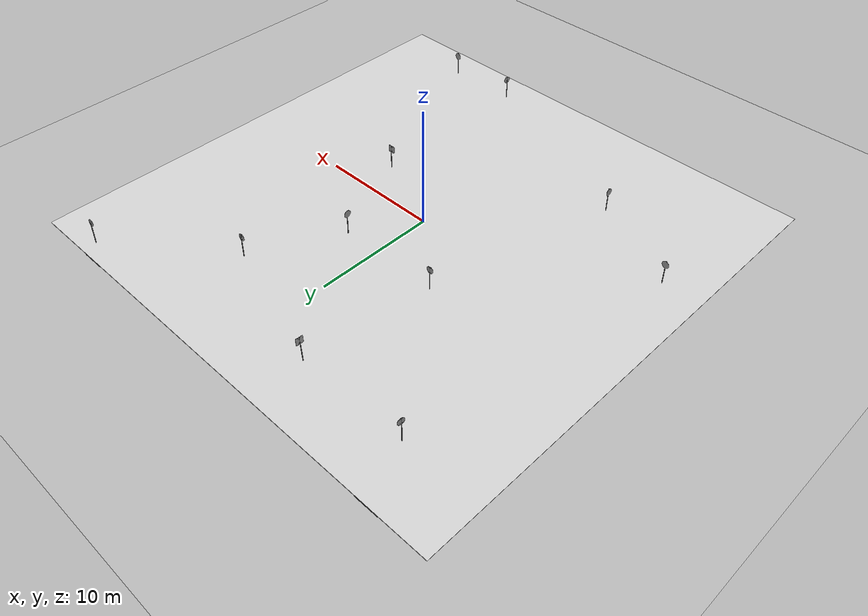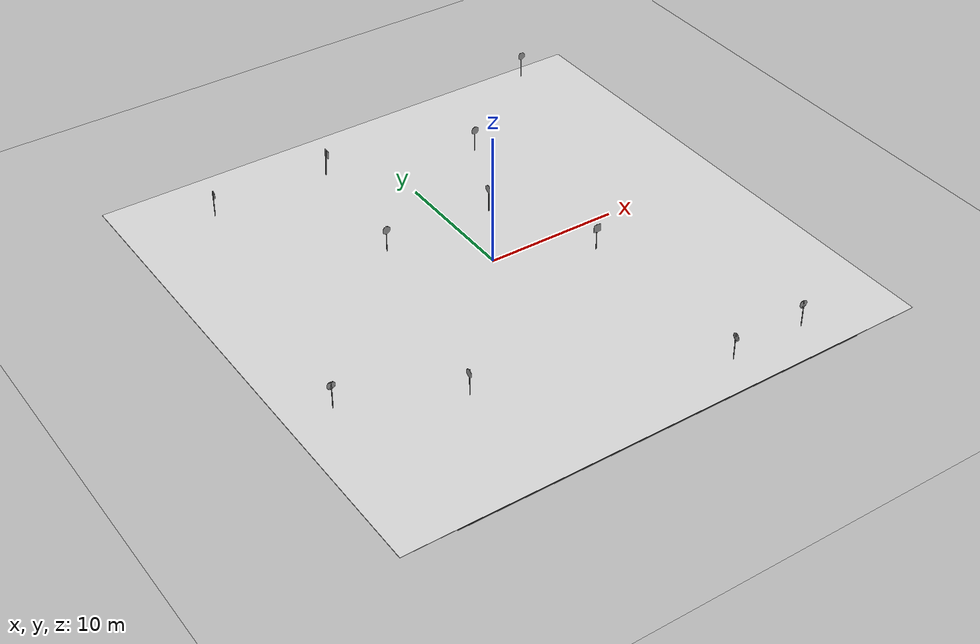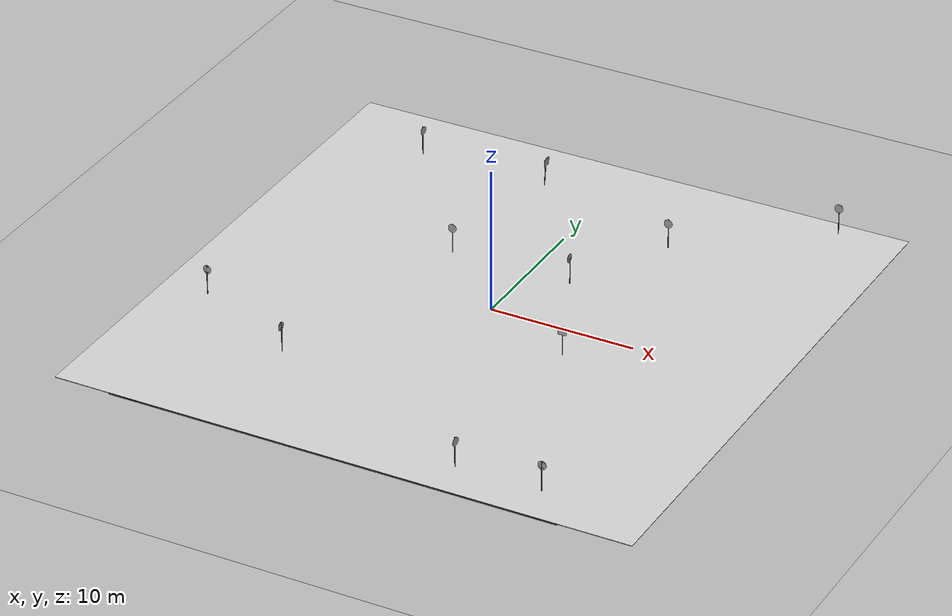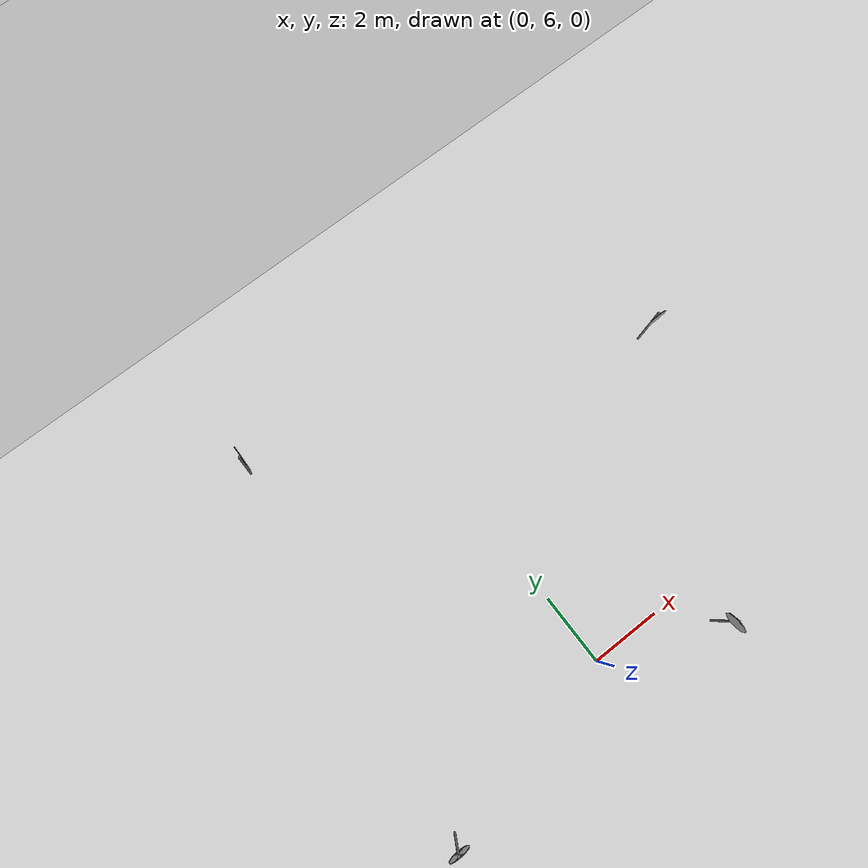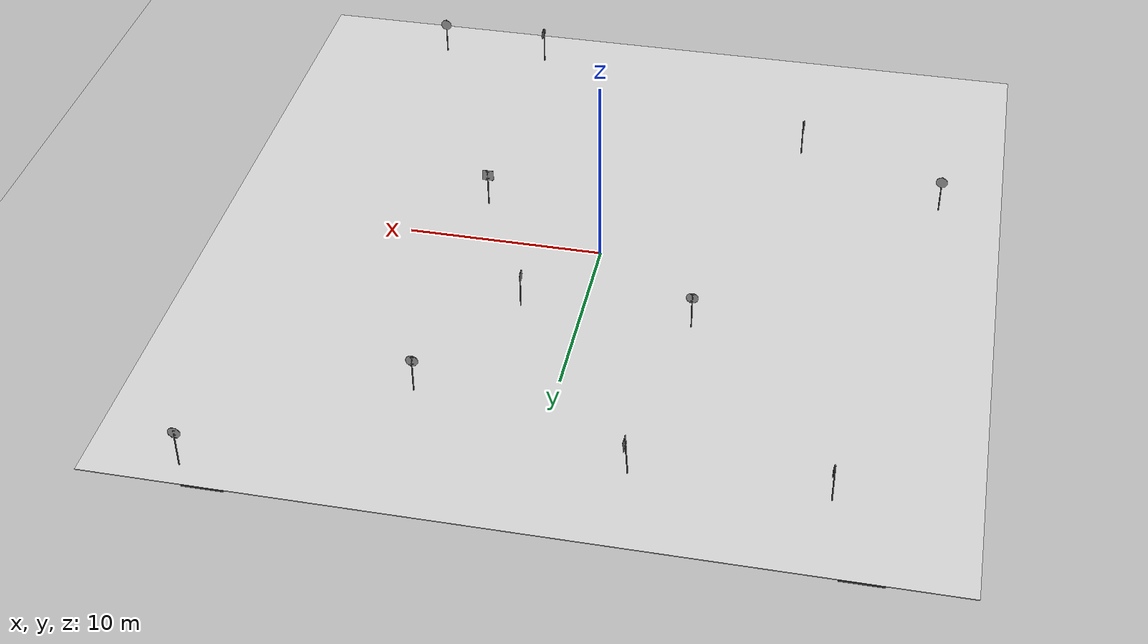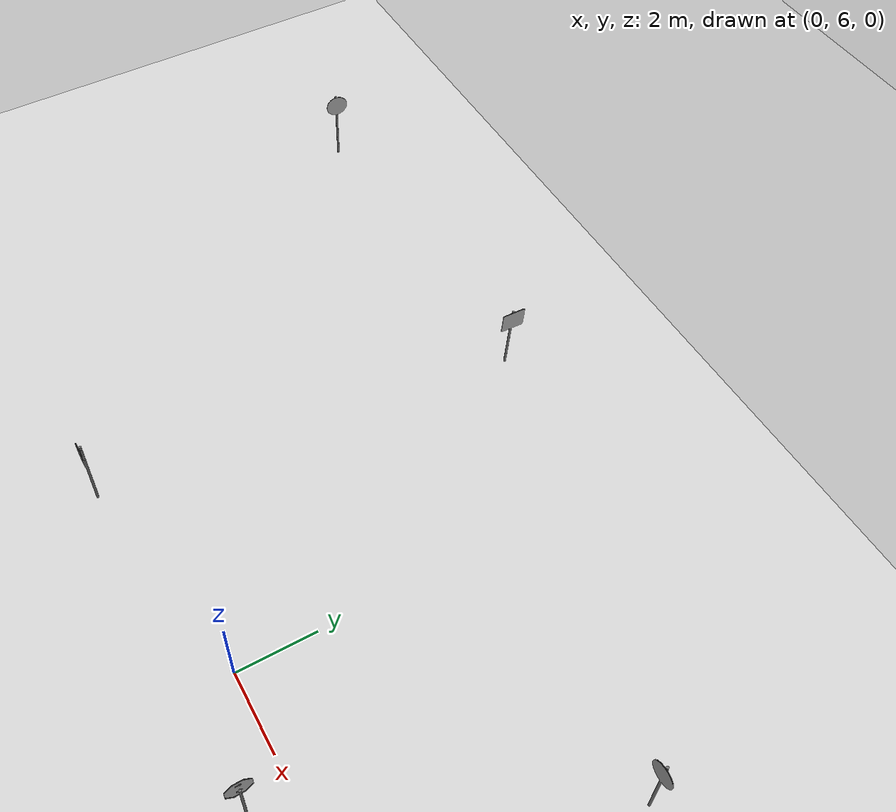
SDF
<sdf version="1.10">
 <world name="default">
  <plugin name="gz::sim::systems::Physics" filename="gz-sim-physics-system"/>
  <plugin name="gz::sim::systems::UserCommands" filename="gz-sim-user-commands-system"/>
  <plugin name="gz::sim::systems::SceneBroadcaster" filename="gz-sim-scene-broadcaster-system"/>
  <plugin name="gz::sim::systems::Sensors" filename="gz-sim-sensors-system">
   <render_engine>ogre2</render_engine>
  </plugin>
  <plugin name="gz::sim::systems::Imu" filename="gz-sim-imu-system"/>
  <physics type="ode">
   <real_time_update_rate>1000</real_time_update_rate>
   <max_step_size>0.001</max_step_size>
   <real_time_factor>1</real_time_factor>
   <ode>
    <solver>
     <type>quick</type>
     <iters>150</iters>
     <precon_iters>0</precon_iters>
     <sor>1.3999999999999999</sor>
     <use_dynamic_moi_rescaling>true</use_dynamic_moi_rescaling>
    </solver>
    <constraints>
     <cfm>1.0000000000000001e-05</cfm>
     <erp>0.20000000000000001</erp>
     <contact_max_correcting_vel>2000</contact_max_correcting_vel>
     <contact_surface_layer>0.01</contact_surface_layer>
    </constraints>
   </ode>
  </physics>
  <gravity>0 0 -9.8000000000000007</gravity>
  <magnetic_field>5.5644999999999998e-06 2.2875799999999999e-05 -4.2388400000000002e-05</magnetic_field>
  <atmosphere type="adiabatic"/>
  <scene>
   <ambient>0.400000006 0.400000006 0.400000006 1</ambient>
   <background>0.699999988 0.699999988 0.699999988 1</background>
   <shadows>true</shadows>
  </scene>
  <model name="ground_plane">
   <static>true</static>
   <link name="link">
    <collision name="collision">
     <geometry><plane><normal>0 0 1</normal><size>100 100</size></plane></geometry>
     <surface><friction><ode><mu>100</mu><mu2>50</mu2></ode></friction></surface>
    </collision>
    <visual name="visual">
     <cast_shadows>false</cast_shadows>
     <geometry><plane><normal>0 0 1</normal><size>100 100</size></plane></geometry>
     <material>
      <ambient>0.300000012 0.300000012 0.300000012 1</ambient>
      <diffuse>0.699999988 0.699999988 0.699999988 1</diffuse>
      <specular>0.00999999978 0.00999999978 0.00999999978 1</specular>
     </material>
    </visual>
    <inertial>
     <mass>1</mass>
     <inertia><ixx>1</ixx><ixy>0</ixy><ixz>0</ixz><iyy>1</iyy><iyz>0</iyz><izz>1</izz></inertia>
    </inertial>
   </link>
  </model>
  <model name="custom_ground">
   <static>true</static>
   <link name="ground_link">
    <collision name="collision">
     <geometry><plane><normal>0 0 1</normal><size>40 40</size></plane></geometry>
    </collision>
    <visual name="visual">
     <cast_shadows>false</cast_shadows>
     <geometry><plane><normal>0 0 1</normal><size>40 40</size></plane></geometry>
     <material>
      <ambient>0.800000012 0.800000012 0.800000012 0</ambient>
      <diffuse>0.800000012 0.800000012 0.800000012 0</diffuse>
      <specular>0.100000001 0.100000001 0.100000001 0</specular>
     </material>
    </visual>
    <inertial>
     <mass>1</mass>
     <inertia><ixx>1</ixx><ixy>0</ixy><ixz>0</ixz><iyy>1</iyy><iyz>0</iyz><izz>1</izz></inertia>
    </inertial>
   </link>
   <pose>0 0 0.1 0 0 0</pose>
  </model>
  <model name="road_straight_1">
   <static>true</static>
   <pose>-0.10000000000000001 14 0 0 0 0</pose>
   <link name="link">
    <visual name="visual">
     <geometry><box><size>10 2 0.099</size></box></geometry>
     <material>
      <script><uri>file://media/materials/scripts/gazebo.material</uri><name>Gazebo/Asphalt</name></script>
     </material>
     <pose>-0.10000000000000001 0 0.050000000000000003 0 0 0</pose>
    </visual>
    <collision name="collision">
     <geometry><box><size>10 2 0.10000000000000001</size></box></geometry>
     <pose>0 0 0.050000000000000003 0 0 0</pose>
    </collision>
    <inertial>
     <mass>1</mass>
     <inertia><ixx>1</ixx><ixy>0</ixy><ixz>0</ixz><iyy>1</iyy><iyz>0</iyz><izz>1</izz></inertia>
    </inertial>
   </link>
  </model>
  <model name="road_straight_11">
   <static>true</static>
   <pose>-10.9 14 0 0 0 0</pose>
   <link name="link">
    <visual name="visual">
     <geometry><box><size>10 2 0.10000000000000001</size></box></geometry>
     <material>
      <script><uri>file://media/materials/scripts/gazebo.material</uri><name>Gazebo/Asphalt</name></script>
     </material>
     <pose>-0.10000000000000001 0 0.050000000000000003 0 0 0</pose>
    </visual>
    <collision name="collision">
     <geometry><box><size>10 2 0.10000000000000001</size></box></geometry>
     <pose>0 0 0.050000000000000003 0 0 0</pose>
    </collision>
    <inertial>
     <mass>1</mass>
     <inertia><ixx>1</ixx><ixy>0</ixy><ixz>0</ixz><iyy>1</iyy><iyz>0</iyz><izz>1</izz></inertia>
    </inertial>
   </link>
  </model>
  <model name="road_straight_7">
   <static>true</static>
   <pose>-10.9 -9 0 0 0 0</pose>
   <link name="link">
    <visual name="visual">
     <geometry><box><size>10 2 0.10000000000000001</size></box></geometry>
     <material>
      <script><uri>file://media/materials/scripts/gazebo.material</uri><name>Gazebo/Asphalt</name></script>
     </material>
     <pose>-0.10000000000000001 0 0.050000000000000003 0 0 0</pose>
    </visual>
    <collision name="collision">
     <geometry><box><size>10 2 0.10000000000000001</size></box></geometry>
     <pose>0 0 0.050000000000000003 0 0 0</pose>
    </collision>
    <inertial>
     <mass>1</mass>
     <inertia><ixx>1</ixx><ixy>0</ixy><ixz>0</ixz><iyy>1</iyy><iyz>0</iyz><izz>1</izz></inertia>
    </inertial>
   </link>
  </model>
  <model name="road_straight_6">
   <static>true</static>
   <pose>-1 -19 0 0 0 0</pose>
   <link name="link">
    <visual name="visual">
     <geometry><box><size>30 2 0.10000000000000001</size></box></geometry>
     <material>
      <script><uri>file://media/materials/scripts/gazebo.material</uri><name>Gazebo/Asphalt</name></script>
     </material>
     <pose>-0.10000000000000001 0 0.050000000000000003 0 0 0</pose>
    </visual>
    <collision name="collision">
     <geometry><box><size>10 2 0.10000000000000001</size></box></geometry>
     <pose>0 0 0.050000000000000003 0 0 0</pose>
    </collision>
    <inertial>
     <mass>1</mass>
     <inertia><ixx>1</ixx><ixy>0</ixy><ixz>0</ixz><iyy>1</iyy><iyz>0</iyz><izz>1</izz></inertia>
    </inertial>
   </link>
  </model>
  <model name="road_turn_1">
   <static>true</static>
   <pose>5 7 0 0 0 1.5708000000000011</pose>
   <link name="link">
    <visual name="visual">
     <geometry><box><size>16 2 0.10000000000000001</size></box></geometry>
     <material>
      <script><uri>file://media/materials/scripts/gazebo.material</uri><name>Gazebo/Asphalt</name></script>
     </material>
     <pose>0 0 0.050000000000000003 0 0 0</pose>
    </visual>
    <collision name="collision">
     <geometry><box><size>16 2 0.10000000000000001</size></box></geometry>
     <pose>0 0 0.050000000000000003 0 0 0</pose>
    </collision>
    <inertial>
     <mass>1</mass>
     <inertia><ixx>1</ixx><ixy>0</ixy><ixz>0</ixz><iyy>1</iyy><iyz>0</iyz><izz>1</izz></inertia>
    </inertial>
   </link>
  </model>
  <model name="road_turn_3">
   <static>true</static>
   <pose>-7 0 0 0 0 1.5708000000000011</pose>
   <link name="link">
    <visual name="visual">
     <geometry><box><size>16 2 0.10000000000000001</size></box></geometry>
     <material>
      <script><uri>file://media/materials/scripts/gazebo.material</uri><name>Gazebo/Asphalt</name></script>
     </material>
     <pose>0 0 0.050000000000000003 0 0 0</pose>
    </visual>
    <collision name="collision">
     <geometry><box><size>16 2 0.10000000000000001</size></box></geometry>
     <pose>0 0 0.050000000000000003 0 0 0</pose>
    </collision>
    <inertial>
     <mass>1</mass>
     <inertia><ixx>1</ixx><ixy>0</ixy><ixz>0</ixz><iyy>1</iyy><iyz>0</iyz><izz>1</izz></inertia>
    </inertial>
   </link>
  </model>
  <model name="road_turn_2">
   <static>true</static>
   <pose>5 -9.9499999999999993 0 0 0 1.5708000000000011</pose>
   <link name="link">
    <visual name="visual">
     <geometry><box><size>16.100000000000001 2 0.10000000000000001</size></box></geometry>
     <material>
      <script><uri>file://media/materials/scripts/gazebo.material</uri><name>Gazebo/Asphalt</name></script>
     </material>
     <pose>0 0 0.050000000000000003 0 0 0</pose>
    </visual>
    <collision name="collision">
     <geometry><box><size>16 2 0.10000000000000001</size></box></geometry>
     <pose>0 0 0.050000000000000003 0 0 0</pose>
    </collision>
    <inertial>
     <mass>1</mass>
     <inertia><ixx>1</ixx><ixy>0</ixy><ixz>0</ixz><iyy>1</iyy><iyz>0</iyz><izz>1</izz></inertia>
    </inertial>
   </link>
  </model>
  <model name="road_turn_4">
   <static>true</static>
   <pose>14 12 0 0 0 1.5708000000000011</pose>
   <link name="link">
    <visual name="visual">
     <geometry><box><size>16 2 0.10000000000000001</size></box></geometry>
     <material>
      <script><uri>file://media/materials/scripts/gazebo.material</uri><name>Gazebo/Asphalt</name></script>
     </material>
     <pose>0 0 0.050000000000000003 0 0 0</pose>
    </visual>
    <collision name="collision">
     <geometry><box><size>16 2 0.10000000000000001</size></box></geometry>
     <pose>0 0 0.050000000000000003 0 0 0</pose>
    </collision>
    <inertial>
     <mass>1</mass>
     <inertia><ixx>1</ixx><ixy>0</ixy><ixz>0</ixz><iyy>1</iyy><iyz>0</iyz><izz>1</izz></inertia>
    </inertial>
   </link>
  </model>
  <model name="road_turn_5">
   <static>true</static>
   <pose>14 -4 0 0 0 1.5708000000000011</pose>
   <link name="link">
    <visual name="visual">
     <geometry><box><size>16 2 0.10000000000000001</size></box></geometry>
     <material>
      <script><uri>file://media/materials/scripts/gazebo.material</uri><name>Gazebo/Asphalt</name></script>
     </material>
     <pose>0 0 0.050000000000000003 0 0 0</pose>
    </visual>
    <collision name="collision">
     <geometry><box><size>16 2 0.10000000000000001</size></box></geometry>
     <pose>0 0 0.050000000000000003 0 0 0</pose>
    </collision>
    <inertial>
     <mass>1</mass>
     <inertia><ixx>1</ixx><ixy>0</ixy><ixz>0</ixz><iyy>1</iyy><iyz>0</iyz><izz>1</izz></inertia>
    </inertial>
   </link>
  </model>
  <model name="road_turn_6">
   <static>true</static>
   <pose>14 -12 0 0 0 1.5708000000000011</pose>
   <link name="link">
    <visual name="visual">
     <geometry><box><size>16 2 0.10000000000000001</size></box></geometry>
     <material>
      <script><uri>file://media/materials/scripts/gazebo.material</uri><name>Gazebo/Asphalt</name></script>
     </material>
     <pose>0 0 0.050000000000000003 0 0 0</pose>
    </visual>
    <collision name="collision">
     <geometry><box><size>16 2 0.10000000000000001</size></box></geometry>
     <pose>0 0 0.050000000000000003 0 0 0</pose>
    </collision>
    <inertial>
     <mass>1</mass>
     <inertia><ixx>1</ixx><ixy>0</ixy><ixz>0</ixz><iyy>1</iyy><iyz>0</iyz><izz>1</izz></inertia>
    </inertial>
   </link>
  </model>
  <model name="road_turn_7">
   <static>true</static>
   <pose>-15.1 0 0 0 0 1.5708000000000011</pose>
   <link name="link">
    <visual name="visual">
     <geometry><box><size>40 2 0.10000000000000001</size></box></geometry>
     <material>
      <script><uri>file://media/materials/scripts/gazebo.material</uri><name>Gazebo/Asphalt</name></script>
     </material>
     <pose>0 0 0.050000000000000003 0 0 0</pose>
    </visual>
    <collision name="collision">
     <geometry><box><size>16 2 0.10000000000000001</size></box></geometry>
     <pose>0 0 0.050000000000000003 0 0 0</pose>
    </collision>
    <inertial>
     <mass>1</mass>
     <inertia><ixx>1</ixx><ixy>0</ixy><ixz>0</ixz><iyy>1</iyy><iyz>0</iyz><izz>1</izz></inertia>
    </inertial>
   </link>
  </model>
  <model name="road_straight_2">
   <static>true</static>
   <pose>-1 7 0 0 0 0</pose>
   <link name="link">
    <visual name="visual">
     <geometry><box><size>10 2 0.10000000000000001</size></box></geometry>
     <material>
      <script><uri>file://media/materials/scripts/gazebo.material</uri><name>Gazebo/Asphalt</name></script>
     </material>
     <pose>0 0 0.050000000000000003 0 0 0</pose>
    </visual>
    <collision name="collision">
     <geometry><box><size>10 2 0.10000000000000001</size></box></geometry>
     <pose>0 0 0.050000000000000003 0 0 0</pose>
    </collision>
    <inertial>
     <mass>1</mass>
     <inertia><ixx>1</ixx><ixy>0</ixy><ixz>0</ixz><iyy>1</iyy><iyz>0</iyz><izz>1</izz></inertia>
    </inertial>
   </link>
  </model>
  <model name="road_straight_4">
   <static>true</static>
   <pose>10 14 0 0 0 0</pose>
   <link name="link">
    <visual name="visual">
     <geometry><box><size>10 2 0.10000000000000001</size></box></geometry>
     <material>
      <script><uri>file://media/materials/scripts/gazebo.material</uri><name>Gazebo/Asphalt</name></script>
     </material>
     <pose>0 0 0.050000000000000003 0 0 0</pose>
    </visual>
    <collision name="collision">
     <geometry><box><size>10 2 0.10000000000000001</size></box></geometry>
     <pose>0 0 0.050000000000000003 0 0 0</pose>
    </collision>
    <inertial>
     <mass>1</mass>
     <inertia><ixx>1</ixx><ixy>0</ixy><ixz>0</ixz><iyy>1</iyy><iyz>0</iyz><izz>1</izz></inertia>
    </inertial>
   </link>
  </model>
  <model name="zebra_crossing">
   <static>true</static>
   <pose>5 -1.45 0 0 0 0</pose>
   <link name="zebra_link">
    <visual name="black_base">
     <pose>0 0 0.049 0 0 0</pose>
     <geometry><box><size>2.1000000000000001 0.90000000000000002 0.10000000000000001</size></box></geometry>
     <material>
      <ambient>0 0 0 1</ambient>
      <diffuse>0 0 0 1</diffuse>
      <specular>0.100000001 0.100000001 0.100000001 1</specular>
     </material>
    </visual>
    <visual name="stripe1">
     <pose>-0.875 0 0.050000000000000003 0 0 0</pose>
     <geometry><box><size>0.25 0.90000000000000002 0.10000000000000001</size></box></geometry>
     <material><ambient>1 1 1 1</ambient><diffuse>1 1 1 1</diffuse></material>
    </visual>
    <visual name="stripe2">
     <pose>-0.52500000000000002 0 0.050000000000000003 0 0 0</pose>
     <geometry><box><size>0.25 0.90000000000000002 0.10000000000000001</size></box></geometry>
     <material><ambient>1 1 1 1</ambient><diffuse>1 1 1 1</diffuse></material>
    </visual>
    <visual name="stripe3">
     <pose>-0.17499999999999999 0 0.050000000000000003 0 0 0</pose>
     <geometry><box><size>0.25 0.90000000000000002 0.10000000000000001</size></box></geometry>
     <material><ambient>1 1 1 1</ambient><diffuse>1 1 1 1</diffuse></material>
    </visual>
    <visual name="stripe4">
     <pose>0.17499999999999999 0 0.050000000000000003 0 0 0</pose>
     <geometry><box><size>0.25 0.90000000000000002 0.10000000000000001</size></box></geometry>
     <material><ambient>1 1 1 1</ambient><diffuse>1 1 1 1</diffuse></material>
    </visual>
    <visual name="stripe5">
     <pose>0.52500000000000002 0 0.050000000000000003 0 0 0</pose>
     <geometry><box><size>0.25 0.90000000000000002 0.10000000000000001</size></box></geometry>
     <material><ambient>1 1 1 1</ambient><diffuse>1 1 1 1</diffuse></material>
    </visual>
    <visual name="stripe6">
     <pose>0.875 0 0.050000000000000003 0 0 0</pose>
     <geometry><box><size>0.25 0.90000000000000002 0.10000000000000001</size></box></geometry>
     <material><ambient>1 1 1 1</ambient><diffuse>1 1 1 1</diffuse></material>
    </visual>
    <inertial>
     <mass>1</mass>
     <inertia><ixx>1</ixx><ixy>0</ixy><ixz>0</ixz><iyy>1</iyy><iyz>0</iyz><izz>1</izz></inertia>
    </inertial>
   </link>
  </model>
  <model name="zebra_crossing2">
   <static>true</static>
   <pose>-5.5499999999999998 14 0 0 0 1.5708000000000011</pose>
   <link name="zebra_link2">
    <visual name="black_base">
     <pose>0 0 0.049 0 0 0</pose>
     <geometry><box><size>2.1000000000000001 0.90000000000000002 0.10000000000000001</size></box></geometry>
     <material>
      <ambient>0 0 0 1</ambient>
      <diffuse>0 0 0 1</diffuse>
      <specular>0.100000001 0.100000001 0.100000001 1</specular>
     </material>
    </visual>
    <visual name="stripe1">
     <pose>-0.875 0 0.050000000000000003 0 0 0</pose>
     <geometry><box><size>0.25 0.90000000000000002 0.10000000000000001</size></box></geometry>
     <material><ambient>1 1 1 1</ambient><diffuse>1 1 1 1</diffuse></material>
    </visual>
    <visual name="stripe2">
     <pose>-0.52500000000000002 0 0.050000000000000003 0 0 0</pose>
     <geometry><box><size>0.25 0.90000000000000002 0.10000000000000001</size></box></geometry>
     <material><ambient>1 1 1 1</ambient><diffuse>1 1 1 1</diffuse></material>
    </visual>
    <visual name="stripe3">
     <pose>-0.17499999999999999 0 0.050000000000000003 0 0 0</pose>
     <geometry><box><size>0.25 0.90000000000000002 0.10000000000000001</size></box></geometry>
     <material><ambient>1 1 1 1</ambient><diffuse>1 1 1 1</diffuse></material>
    </visual>
    <visual name="stripe4">
     <pose>0.17499999999999999 0 0.050000000000000003 0 0 0</pose>
     <geometry><box><size>0.25 0.90000000000000002 0.10000000000000001</size></box></geometry>
     <material><ambient>1 1 1 1</ambient><diffuse>1 1 1 1</diffuse></material>
    </visual>
    <visual name="stripe5">
     <pose>0.52500000000000002 0 0.050000000000000003 0 0 0</pose>
     <geometry><box><size>0.25 0.90000000000000002 0.10000000000000001</size></box></geometry>
     <material><ambient>1 1 1 1</ambient><diffuse>1 1 1 1</diffuse></material>
    </visual>
    <visual name="stripe6">
     <pose>0.875 0 0.050000000000000003 0 0 0</pose>
     <geometry><box><size>0.25 0.90000000000000002 0.10000000000000001</size></box></geometry>
     <material><ambient>1 1 1 1</ambient><diffuse>1 1 1 1</diffuse></material>
    </visual>
    <inertial>
     <mass>1</mass>
     <inertia><ixx>1</ixx><ixy>0</ixy><ixz>0</ixz><iyy>1</iyy><iyz>0</iyz><izz>1</izz></inertia>
    </inertial>
   </link>
  </model>
  <model name="T_zebra">
   <static>true</static>
   <link name="link">
    <visual name="visual">
     <geometry><mesh><scale>1 1 1</scale><uri>model://T_zebra/meshes/T_zebra.dae</uri></mesh></geometry>
    </visual>
    <inertial>
     <mass>1</mass>
     <inertia><ixx>1</ixx><ixy>0</ixy><ixz>0</ixz><iyy>1</iyy><iyz>0</iyz><izz>1</izz></inertia>
    </inertial>
   </link>
   <pose>6.5854396005432756 -2.9643919300494348 0 0 0 0</pose>
  </model>
  <model name="T_zebra_0">
   <static>true</static>
   <link name="link">
    <visual name="visual">
     <geometry><mesh><scale>1 1 1</scale><uri>model://T_zebra/meshes/T_zebra.dae</uri></mesh></geometry>
    </visual>
    <inertial>
     <mass>1</mass>
     <inertia><ixx>1</ixx><ixy>0</ixy><ixz>0</ixz><iyy>1</iyy><iyz>0</iyz><izz>1</izz></inertia>
    </inertial>
   </link>
   <pose>-4.2943000793457031 15.501899719238281 0 0.061877996872363762 0.0019252373758049911 1.5397325899983749</pose>
  </model>
  <model name="T_right">
   <static>true</static>
   <link name="link">
    <visual name="visual">
     <geometry><mesh><scale>1 1 1</scale><uri>model://T_right/meshes/T_right.dae</uri></mesh></geometry>
    </visual>
    <inertial>
     <mass>1</mass>
     <inertia><ixx>1</ixx><ixy>0</ixy><ixz>0</ixz><iyy>1</iyy><iyz>0</iyz><izz>1</izz></inertia>
    </inertial>
   </link>
   <pose>12.581500053405762 -17.270500183105469 0 0 0 3.1056125665829737</pose>
  </model>
  <model name="T_right_0">
   <static>true</static>
   <link name="link">
    <visual name="visual">
     <geometry><mesh><scale>1 1 1</scale><uri>model://T_right/meshes/T_right.dae</uri></mesh></geometry>
    </visual>
    <inertial>
     <mass>1</mass>
     <inertia><ixx>1</ixx><ixy>0</ixy><ixz>0</ixz><iyy>1</iyy><iyz>0</iyz><izz>1</izz></inertia>
    </inertial>
   </link>
   <pose>6.7395901679992676 -17.336999893188477 0 0 0 1.4500841858896598</pose>
  </model>
  <model name="T_left">
   <static>true</static>
   <link name="link">
    <visual name="visual">
     <geometry><mesh><scale>1 1 1</scale><uri>model://T_left/meshes/T_left.dae</uri></mesh></geometry>
    </visual>
    <inertial>
     <mass>1</mass>
     <inertia><ixx>1</ixx><ixy>0</ixy><ixz>0</ixz><iyy>1</iyy><iyz>0</iyz><izz>1</izz></inertia>
    </inertial>
   </link>
   <pose>6.5314160753958079 12.027400381812399 0 0 0 0</pose>
  </model>
  <model name="T_STOP">
   <static>true</static>
   <link name="link">
    <visual name="visual">
     <geometry><mesh><scale>1 1 1</scale><uri>model://T_STOP/meshes/T_STOP.dae</uri></mesh></geometry>
    </visual>
    <inertial>
     <mass>1</mass>
     <inertia><ixx>1</ixx><ixy>0</ixy><ixz>0</ixz><iyy>1</iyy><iyz>0</iyz><izz>1</izz></inertia>
    </inertial>
   </link>
   <pose>15.508194923400879 18.827400207519531 0 0 0 0</pose>
  </model>
  <model name="T_left_0">
   <static>true</static>
   <link name="link">
    <visual name="visual">
     <geometry><mesh><scale>1 1 1</scale><uri>model://T_left/meshes/T_left.dae</uri></mesh></geometry>
    </visual>
    <inertial>
     <mass>1</mass>
     <inertia><ixx>1</ixx><ixy>0</ixy><ixz>0</ixz><iyy>1</iyy><iyz>0</iyz><izz>1</izz></inertia>
    </inertial>
   </link>
   <pose>-13.386599540710449 15.420100212097168 0 0 0 1.4693113093022714</pose>
  </model>
  <model name="T_left_1">
   <static>true</static>
   <link name="link">
    <visual name="visual">
     <geometry><mesh><scale>1 1 1</scale><uri>model://T_left/meshes/T_left.dae</uri></mesh></geometry>
    </visual>
    <inertial>
     <mass>1</mass>
     <inertia><ixx>1</ixx><ixy>0</ixy><ixz>0</ixz><iyy>1</iyy><iyz>0</iyz><izz>1</izz></inertia>
    </inertial>
   </link>
   <pose>-16.757699966430664 -6.9759202003479004 0 0 0 3.0609051471917952</pose>
  </model>
  <model name="T_left_2">
   <static>true</static>
   <link name="link">
    <visual name="visual">
     <geometry><mesh><scale>1 1 1</scale><uri>model://T_left/meshes/T_left.dae</uri></mesh></geometry>
    </visual>
    <inertial>
     <mass>1</mass>
     <inertia><ixx>1</ixx><ixy>0</ixy><ixz>0</ixz><iyy>1</iyy><iyz>0</iyz><izz>1</izz></inertia>
    </inertial>
   </link>
   <pose>-9.0965595245361328 -10.742600440979004 0 0 0 -1.5800239904952129</pose>
  </model>
  <model name="T_right_1">
   <static>true</static>
   <link name="link">
    <visual name="visual">
     <geometry><mesh><scale>1 1 1</scale><uri>model://T_right/meshes/T_right.dae</uri></mesh></geometry>
    </visual>
    <inertial>
     <mass>1</mass>
     <inertia><ixx>1</ixx><ixy>0</ixy><ixz>0</ixz><iyy>1</iyy><iyz>0</iyz><izz>1</izz></inertia>
    </inertial>
   </link>
   <pose>-5.491934148777915 4.9887972793400124 0 0 0 0</pose>
  </model>
  <model name="T_STOP_0">
   <static>true</static>
   <link name="link">
    <visual name="visual">
     <geometry><mesh><scale>1 1 1</scale><uri>model://T_STOP/meshes/T_STOP.dae</uri></mesh></geometry>
    </visual>
    <inertial>
     <mass>1</mass>
     <inertia><ixx>1</ixx><ixy>0</ixy><ixz>0</ixz><iyy>1</iyy><iyz>0</iyz><izz>1</izz></inertia>
    </inertial>
   </link>
   <pose>3.0155997276306152 4.9898285865783691 0 0 0 -1.5529900595415085</pose>
  </model>
  <light name="sun" type="directional">
   <pose>0 0 10 0 0 0</pose>
   <intensity>1</intensity>
   <direction>-0.5 0.10000000000000001 -0.90000000000000002</direction>
   <diffuse>0.800000012 0.800000012 0.800000012 1</diffuse>
   <specular>0.200000003 0.200000003 0.200000003 1</specular>
   <attenuation>
    <range>1000</range>
    <linear>0.01</linear>
    <constant>0.90000000000000002</constant>
    <quadratic>0.001</quadratic>
   </attenuation>
   <spot><inner_angle>0</inner_angle><outer_angle>0</outer_angle><falloff>0</falloff></spot>
  </light>
 </world>
</sdf>
